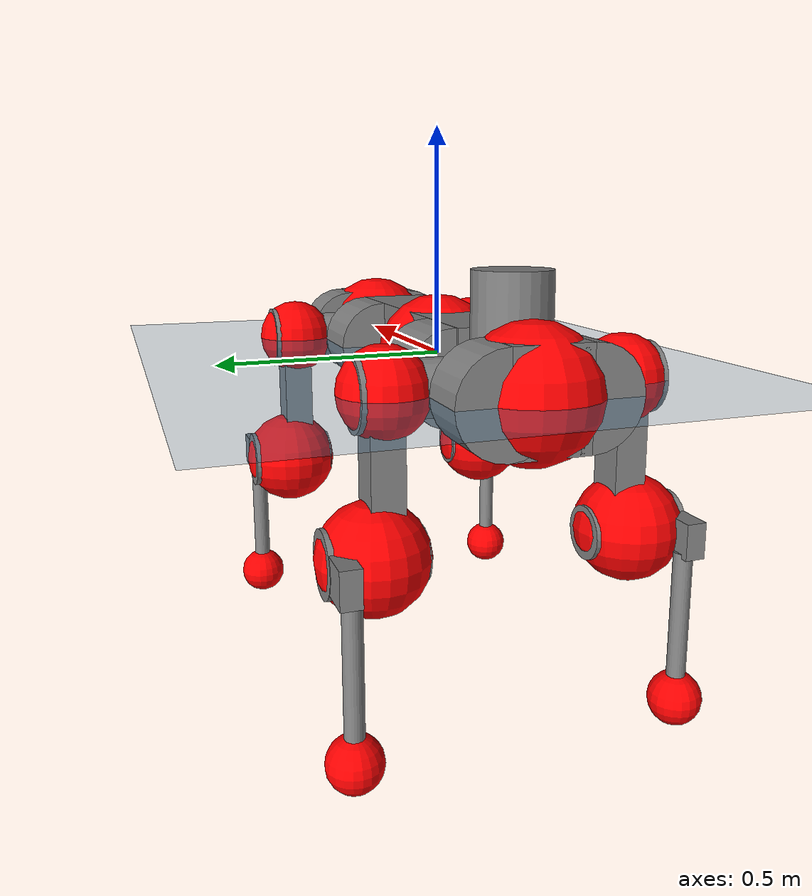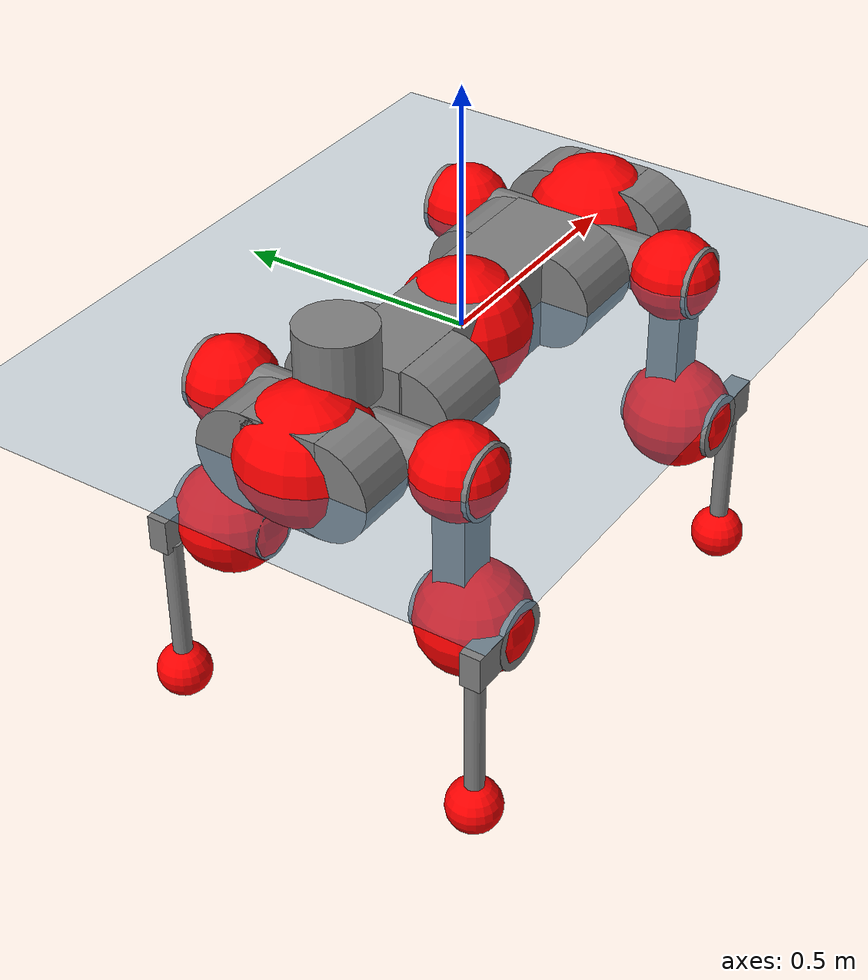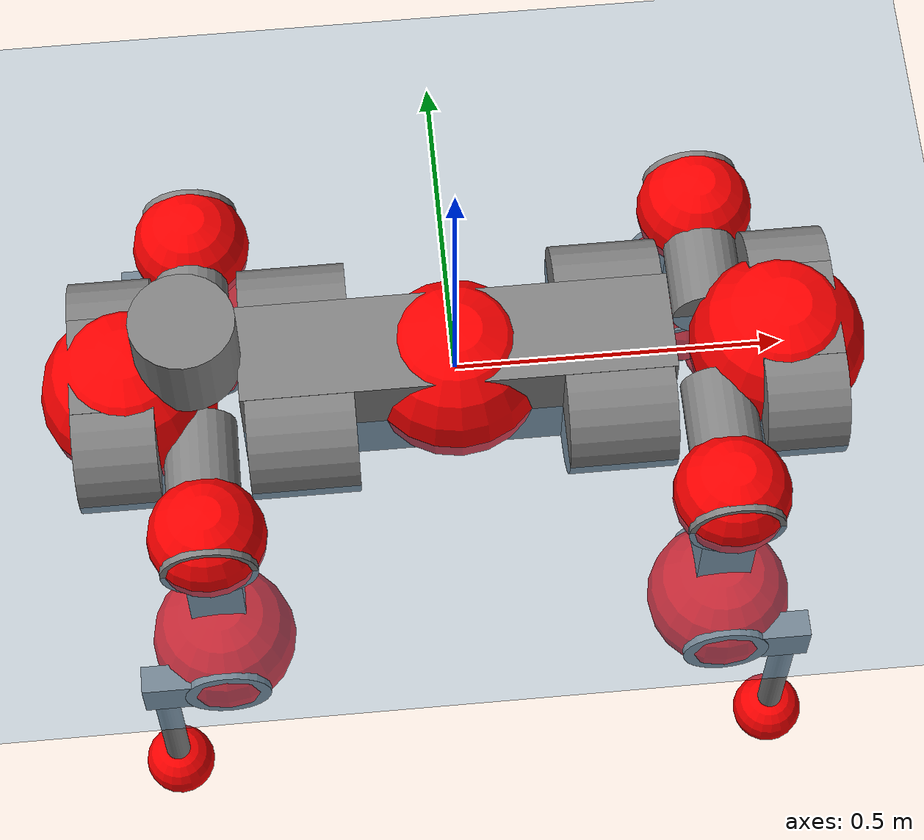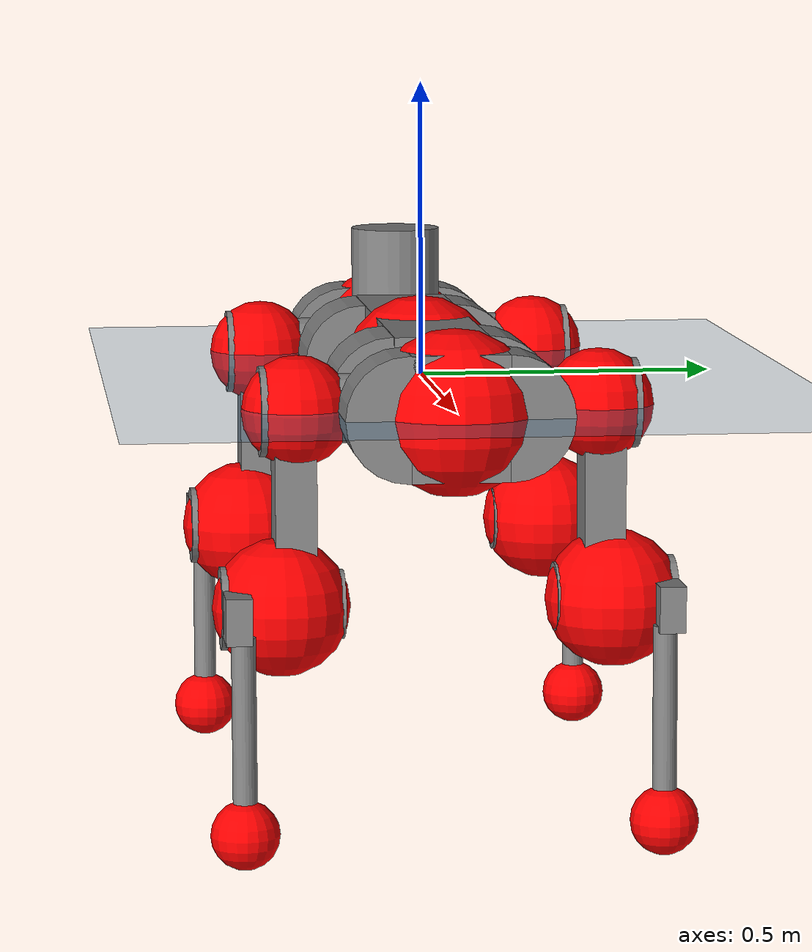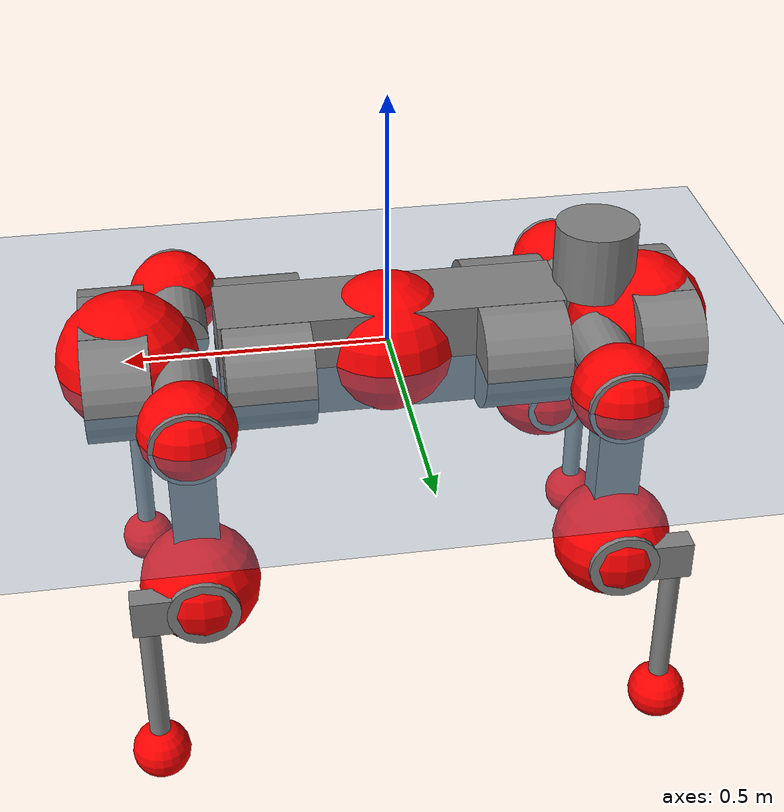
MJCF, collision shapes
<mujoco model="anymal_c">
  <compiler angle="radian" assetdir="assets" balanceinertia="true" inertiafromgeom="false"/>

  <option timestep="0.005" density="1.2" viscosity="2e-05"/>

  <size nkey="1"/>

  <visual>
    <quality shadowsize="8192"/>
    <map shadowclip="0.5"/>
  </visual>

  <default>
    <default class="/">
      <material specular="0" shininess="0.25"/>
      <geom contype="0" conaffinity="0" group="1" solref="-1000 -80"/>
      <site size="0.01 0.005 0.005" group="5"/>
      <general forcelimited="true" forcerange="-80 80" biastype="affine" gainprm="80" biasprm="0 -80 -2"/>
      <default class="anymal_c">
        <joint armature="0.01" damping="0.01" frictionloss="0.1"/>
        <default class="visual">
          <geom type="mesh" group="2"/>
          <default class="visual_zflip"/>
        </default>
        <default class="collision">
          <geom type="cylinder" group="3"/>
          <default class="foot">
            <geom size="0.03 0 0" type="sphere" condim="6" priority="1" friction="0.8 0.02 0.01" solimp="0.015 1 0.03"/>
          </default>
        </default>
      </default>
      <default class="reward_collision_sphere">
        <geom group="5" rgba="1 0 0 1"/>
      </default>
    </default>
  </default>

  <asset>
    <texture type="skybox" colorspace="auto" name="//unnamed_texture_0" builtin="gradient" rgb1="0.95 0.95 0.95" rgb2="0.95 0.95 0.95" width="100" height="600"/>
    <texture type="2d" colorspace="auto" name="texplane" builtin="checker" rgb1="0.345 0.575 0.748" rgb2="0.345 0.575 0.748" markrgb="1 1 1" width="512" height="512"/>
    <texture type="2d" colorspace="linear" name="base" file="base.png"/>
    <texture type="2d" colorspace="linear" name="top_shell" file="top_shell.png"/>
    <texture type="2d" colorspace="linear" name="bottom_shell" file="bottom_shell.png"/>
    <texture type="2d" colorspace="linear" name="remote" file="remote.png"/>
    <texture type="2d" colorspace="linear" name="hatch" file="hatch.png"/>
    <texture type="2d" colorspace="linear" name="handle" file="handle.png"/>
    <texture type="2d" colorspace="linear" name="face" file="face.png"/>
    <texture type="2d" colorspace="linear" name="battery" file="battery.png"/>
    <texture type="2d" colorspace="linear" name="lidar_cage" file="lidar_cage.png"/>
    <texture type="2d" colorspace="linear" name="depth_camera" file="depth_camera.png"/>
    <texture type="2d" colorspace="linear" name="wide_angle_camera" file="wide_angle_camera.png"/>
    <texture type="2d" colorspace="linear" name="lidar" file="lidar.png"/>
    <texture type="2d" colorspace="linear" name="drive" file="drive.png"/>
    <texture type="2d" colorspace="linear" name="hip_l" file="hip_l.png"/>
    <texture type="2d" colorspace="linear" name="shank_l" file="shank_l.png"/>
    <texture type="2d" colorspace="linear" name="foot" file="foot.png"/>
    <texture type="2d" colorspace="linear" name="thigh" file="thigh.png"/>
    <texture type="2d" colorspace="linear" name="shank_r" file="shank_r.png"/>
    <texture type="2d" colorspace="linear" name="hip_r" file="hip_r.png"/>
    <material name="MatPlane" class="/" texture="texplane" texuniform="true" texrepeat="2 2" specular="0.9" shininess="0.5"/>
    <material name="black_plastic" class="/" rgba="0.007 0.007 0.007 1"/>
    <material name="green" class="/" rgba="0.052 0.178 0.033 1"/>
    <material name="red" class="/" rgba="0.178 0.006 0.005 1"/>
    <material name="yellow" class="/" rgba="0.178 0.119 0.006 1"/>
    <material name="lwl" class="/" rgba="0.8 0.8 0.8 1"/>
    <material name="base" class="/" texture="base"/>
    <material name="top_shell" class="/" texture="top_shell"/>
    <material name="bottom_shell" class="/" texture="bottom_shell"/>
    <material name="hip_l" class="/" texture="hip_l"/>
    <material name="thigh" class="/" texture="thigh"/>
    <material name="shank_l" class="/" texture="shank_l"/>
    <material name="foot" class="/" texture="foot"/>
    <material name="hip_r" class="/" texture="hip_r"/>
    <material name="shank" class="/" texture="shank_r"/>
    <material name="hatch" class="/" texture="hatch"/>
    <material name="remote" class="/" texture="remote"/>
    <material name="handle" class="/" texture="handle"/>
    <material name="face" class="/" texture="face"/>
    <material name="depth_camera" class="/" texture="depth_camera"/>
    <material name="wide_angle_camera" class="/" texture="wide_angle_camera"/>
    <material name="battery" class="/" texture="battery"/>
    <material name="lidar_cage" class="/" texture="lidar_cage"/>
    <material name="lidar" class="/" texture="lidar"/>
    <material name="drive" class="/" texture="drive"/>
    <mesh name="base_0" class="/" file="base_0.obj"/>
    <mesh name="base_1" class="/" file="base_1.obj"/>
    <mesh name="base_2" class="/" file="base_2.obj"/>
    <mesh name="base_3" class="/" file="base_3.obj"/>
    <mesh name="base_4" class="/" file="base_4.obj"/>
    <mesh name="base_5" class="/" file="base_5.obj"/>
    <mesh name="top_shell" class="/" file="top_shell.obj"/>
    <mesh name="bottom_shell" class="/" file="bottom_shell.obj"/>
    <mesh name="remote" class="/" file="remote.obj"/>
    <mesh name="handle" class="/" file="handle.obj"/>
    <mesh name="face" class="/" file="face.obj"/>
    <mesh name="wide_angle_camera" class="/" file="wide_angle_camera.obj"/>
    <mesh name="depth_camera" class="/" file="depth_camera.obj"/>
    <mesh name="battery" class="/" file="battery.obj"/>
    <mesh name="lidar_cage" class="/" file="lidar_cage.obj"/>
    <mesh name="lidar" class="/" file="lidar.obj"/>
    <mesh name="drive" class="/" file="drive.obj"/>
    <mesh name="hip_l" class="/" file="hip_l.obj"/>
    <mesh name="thigh" class="/" file="thigh.obj"/>
    <mesh name="shank_l" class="/" file="shank_l.obj"/>
    <mesh name="foot" class="/" file="foot.obj"/>
    <mesh name="hip_r" class="/" file="hip_r.obj"/>
    <mesh name="hatch" class="/" file="hatch.obj"/>
    <mesh name="shank_r" class="/" file="shank_r.obj"/>
  </asset>

  <worldbody>
    <geom name="floor" class="/" size="100 100 0.125" type="plane" group="0" material="MatPlane"/>
    <light name="toplight_shadow" class="/" pos="0 0 5" dir="0.0990148 0.0990148 -0.990148" type="directional" ambient="0.04 0.04 0.04" diffuse="0.55 0.55 0.55" specular="0.12 0.12 0.12"/>
    <light name="toplight_fill" class="/" pos="0 0 5" dir="0.0990148 0.0990148 -0.990148" type="directional" castshadow="false" ambient="0.04 0.04 0.04" diffuse="0.3 0.3 0.3" specular="0.08 0.08 0.08"/>
    <body name="trunk" childclass="anymal_c" pos="-0.000201874 -0.00142157 -0.000371121" quat="1 3.90642e-05 5.3376e-05 -3.62693e-05">
      <inertial pos="0.00461415 -0.000946846 0.0536545" quat="0.503957 0.50477 0.497599 0.493589" mass="27.2029" diaginertia="0.99657 1.28941 0.376451"/>
      <joint name="//unnamed_joint_0" type="free" armature="0" damping="0" frictionloss="0"/>
      <geom name="//unnamed_geom_1" class="visual" material="green" mesh="base_0"/>
      <geom name="//unnamed_geom_2" class="visual" material="yellow" mesh="base_1"/>
      <geom name="//unnamed_geom_3" class="visual" material="red" mesh="base_2"/>
      <geom name="//unnamed_geom_4" class="visual" material="black_plastic" mesh="base_3"/>
      <geom name="//unnamed_geom_5" class="visual" material="lwl" mesh="base_4"/>
      <geom name="//unnamed_geom_6" class="visual" material="base" mesh="base_5"/>
      <geom name="trunk_1" class="collision" size="0.327482 0.0790474 0.101632" type="box"/>
      <geom name="trunk_2" class="collision" size="0.101632 0.0818705" pos="0.23907 0.0820382 0" quat="0.707107 0 0.707107 0"/>
      <geom name="trunk_3" class="collision" size="0.101632 0.0818705" pos="-0.23907 0.0820382 0" quat="0.707107 0 0.707107 0"/>
      <geom name="trunk_4" class="collision" size="0.101632 0.0818705" pos="0.23907 -0.0820382 0" quat="0.707107 0 0.707107 0"/>
      <geom name="trunk_5" class="collision" size="0.101632 0.0818705" pos="-0.23907 -0.0820382 0" quat="0.707107 0 0.707107 0"/>
      <geom name="//unnamed_geom_12" class="visual" material="top_shell" mesh="top_shell"/>
      <geom name="//unnamed_geom_13" class="visual" material="bottom_shell" mesh="bottom_shell"/>
      <geom name="//unnamed_geom_14" class="visual" material="remote" mesh="remote"/>
      <geom name="//unnamed_geom_15" class="visual" material="handle" mesh="handle"/>
      <geom name="//unnamed_geom_16" class="visual" pos="0.455607 0 0" quat="1 0 0 0" material="face" mesh="face"/>
      <geom name="trunk_6" class="collision" size="0.0621087 0.0790474 0.101632" pos="0.516062 0 0" type="box"/>
      <geom name="//unnamed_geom_18" class="collision" size="0.101632 0.0621087" pos="0.516062 0.0820382 0" quat="0.707107 0 0.707107 0"/>
      <geom name="//unnamed_geom_19" class="collision" size="0.101632 0.0621087" pos="0.516062 -0.0820382 0" quat="0.707107 0 0.707107 0"/>
      <geom name="//unnamed_geom_20" class="visual" pos="0.507434 0 -0.0327372" quat="0.965926 0 0.258819 0" material="depth_camera" mesh="depth_camera"/>
      <geom name="//unnamed_geom_21" class="visual" pos="0.563876 0 0.0167155" material="wide_angle_camera" mesh="wide_angle_camera"/>
      <geom name="//unnamed_geom_22" class="visual_zflip" pos="-0.455607 0 0" quat="0 0 0 1" material="face" mesh="face"/>
      <geom name="trunk_7" class="collision" size="0.0621087 0.0790474 0.101632" pos="-0.516062 0 0" quat="0 0 0 1" type="box"/>
      <geom name="//unnamed_geom_24" class="collision" size="0.101632 0.0621087" pos="-0.516062 -0.0820382 0" quat="0 -0.707107 0 0.707107"/>
      <geom name="//unnamed_geom_25" class="collision" size="0.101632 0.0621087" pos="-0.516062 0.0820382 0" quat="0 -0.707107 0 0.707107"/>
      <geom name="//unnamed_geom_26" class="visual" pos="-0.507434 0 -0.0327372" quat="0 -0.258819 0 0.965926" material="depth_camera" mesh="depth_camera"/>
      <geom name="//unnamed_geom_27" class="visual_zflip" pos="-0.563876 0 0.0167155" quat="0 0 0 1" material="wide_angle_camera" mesh="wide_angle_camera"/>
      <geom name="//unnamed_geom_28" class="visual" material="battery" mesh="battery"/>
      <geom name="//unnamed_geom_29" class="visual" pos="0 0.0905652 0.0323048" quat="0.683013 -0.183013 0.183013 0.683013" material="depth_camera" mesh="depth_camera"/>
      <geom name="//unnamed_geom_30" class="visual" pos="0 -0.0905652 0.0323048" quat="0.683013 0.183013 0.183013 -0.683013" material="depth_camera" mesh="depth_camera"/>
      <geom name="//unnamed_geom_31" class="visual" pos="-0.400099 0 0.0820701" quat="1 0 0 0" material="lidar_cage" mesh="lidar_cage"/>
      <geom name="trunk_8" class="collision" size="0.0790474 0.0677549" pos="-0.400099 0 0.149066"/>
      <geom name="//unnamed_geom_33" class="visual" pos="-0.400099 2.86017e-05 0.158781" quat="0.707107 0 0 -0.707107" material="lidar" mesh="lidar"/>
      <geom name="//unnamed_geom_34" class="visual" pos="0.329642 0.121866 9.55205e-10" quat="0.258819 0.965926 0 0" material="drive" mesh="drive"/>
      <geom name="//unnamed_geom_35" class="visual" pos="0.329642 -0.121866 -9.55205e-10" quat="0.258819 -0.965926 0 0" material="drive" mesh="drive"/>
      <geom name="//unnamed_geom_36" class="visual" pos="-0.329642 0.121866 -9.55205e-10" quat="0 0 0.965926 -0.258819" material="drive" mesh="drive"/>
      <geom name="//unnamed_geom_37" class="visual" pos="-0.329642 -0.121866 9.55205e-10" quat="0 0 -0.965926 -0.258819" material="drive" mesh="drive"/>
      <geom name="//unnamed_geom_38" class="visual" pos="0.127504 0 0.0815118" quat="1 0 0 0" material="hatch" mesh="hatch"/>
      <geom name="//unnamed_geom_39" class="reward_collision_sphere" size="0.13551"/>
      <geom name="//unnamed_geom_40" class="reward_collision_sphere" size="0.13551" pos="0.494628 0 0"/>
      <geom name="//unnamed_geom_41" class="reward_collision_sphere" size="0.13551" pos="-0.494628 0 0"/>
      <site name="imu" pos="0.281512 0.0226852 0.0445225" size="0.0112925"/>
      <camera name="track" pos="0 -2.34395 0" quat="0.707107 0.707107 0 0" mode="trackcom"/>
      <camera name="ego_camera" pos="0.494628 0 -0.044664" quat="-0.5 -0.5 0.5 0.5"/>
      <body name="LF_HIP" pos="0.332129 0.120399 0.000157877" quat="0.258277 0.966071 -0.000110658 0.000166669">
        <inertial pos="0.0618523 -0.0173937 -0.00642144" quat="-0.128215 0.710086 -0.135085 0.679037" mass="3.9762" diaginertia="0.00940411 0.0108154 0.00565178"/>
        <joint name="LF_HAA" pos="0 0 0" axis="0.999992 -0.00102794 0.0037954" range="-0.755594 0.542114" armature="0.0116992" damping="0.00192641" frictionloss="0.12495"/>
        <geom name="//unnamed_geom_42" class="visual" pos="0 5.61904e-05 -9.22923e-06" quat="0.258819 -0.965926 0 0" material="hip_l" mesh="hip_l"/>
        <geom name="//unnamed_geom_43" class="visual" pos="0.0658404 -0.0807186 -0.0461933" quat="0.183013 -0.683013 0.683013 0.183013" material="drive" mesh="drive"/>
        <geom name="//unnamed_geom_44" class="collision" size="0.0564624 0.0790474" pos="0.0658404 -0.0140166 -0.00771012" quat="-0.353553 -0.612372 0.612372 -0.353553"/>
        <body name="LF_THIGH" pos="0.0663641 -0.0866533 -0.0482884" quat="0.183168 -0.682584 0.683564 0.182394">
          <inertial pos="0.0358647 0.00250826 -0.273626" quat="0.993172 -0.00561426 -0.0825285 0.0822647" mass="4.42115" diaginertia="0.0478216 0.0654289 0.00696808"/>
          <joint name="LF_HFE" pos="0 0 0" axis="0.999983 0.000209046 0.00587969" stiffness="0.00353487" range="-3.09035 3.1344" armature="0.0118991" damping="0.0182783" frictionloss="0.128065"/>
          <geom name="//unnamed_geom_45" class="visual" pos="-0.00144846 -2.28244e-06 0" quat="0.707107 0 0 -0.707107" material="thigh" mesh="thigh"/>
          <geom name="//unnamed_geom_46" class="collision" size="0.0734012 0.04517" pos="0.0439669 0 0" quat="0.5 0.5 -0.5 -0.5"/>
          <geom name="//unnamed_geom_47" class="collision" size="0.0423468 0.0338775 0.159579" pos="0.0329752 0 -0.157791" quat="0.707107 0 0 -0.707107" type="box"/>
          <geom name="//unnamed_geom_48" class="visual" pos="0.110247 0 -0.318231" quat="1 0 0 0" material="drive" mesh="drive"/>
          <geom name="//unnamed_geom_49" class="collision" size="0.0564624 0.0790474" pos="0.0333049 0 -0.318231" quat="0.707107 0 0.707107 0"/>
          <geom name="//unnamed_geom_50" class="reward_collision_sphere" size="0.0903399" pos="0.0274793 0 0"/>
          <body name="LF_SHANK" pos="0.107576 0.000191256 -0.32119" quat="0.999999 0.000254074 -0.000901602 -0.000996201">
            <inertial pos="0.00827685 -0.0718019 -0.0889097" quat="0.993028 -0.115324 -0.00147961 -0.0243508" mass="0.84611" diaginertia="0.0160131 0.0202994 0.00196561"/>
            <joint name="LF_KFE" pos="0 0 0" axis="0.999977 0.00343193 0.00593186" stiffness="0.00116768" range="-3.11979 3.13283" armature="0.010001" damping="0.00904604" frictionloss="0.110403"/>
            <geom name="//unnamed_geom_51" class="visual" pos="-0.000472311 -0.00251839 0" quat="0.707107 0 0 -0.707107" material="shank_l" mesh="shank_l"/>
            <geom name="LF_kfe_act" class="collision" size="0.0677549 0.022585" pos="0.0219835 0 0" quat="0.5 0.5 -0.5 -0.5"/>
            <geom name="//unnamed_geom_53" class="collision" size="0.0649307 0.0381122 0.0214557" pos="0.0219835 -0.0673873 0" quat="0.5 0.5 -0.5 -0.5" type="box"/>
            <geom name="//unnamed_geom_54" class="visual" pos="0.0143443 -0.103887 -0.377377" quat="0.382683 0 0 -0.92388" material="foot" mesh="foot"/>
            <geom name="LF_calf" class="collision" size="0.0197619 0.159509" pos="0.0143442 -0.103075 -0.188689" quat="0.707107 0 0 -0.707107"/>
            <geom name="LF_foot" class="foot" size="0.0304509" pos="0.0143442 -0.103075 -0.352254" quat="0.707107 0 0 -0.707107"/>
            <geom name="//unnamed_geom_57" class="reward_collision_sphere" size="0.112925" pos="-0.0549586 0 0"/>
            <geom name="//unnamed_geom_58" class="reward_collision_sphere" size="0.0564624" pos="0.0143442 -0.103075 -0.352254"/>
            <site name="LF_foot" class="foot" pos="0.0143442 -0.103075 -0.352254" quat="0.707107 0 0 -0.707107" size="0.0112925"/>
          </body>
        </body>
      </body>
      <body name="RF_HIP" pos="0.328874 -0.123743 -0.00294101" quat="0.258812 -0.965928 -6.28447e-05 0.000177565">
        <inertial pos="0.0598279 0.0201338 -0.00753042" quat="0.135367 0.677474 0.131648 0.710897" mass="3.9562" diaginertia="0.00906491 0.0110612 0.00576168"/>
        <joint name="RF_HAA" pos="0 0 0" axis="0.999926 -0.00652368 0.0102311" range="-0.50195 0.7359" armature="0.0125669" damping="0.0230519" frictionloss="0.127444"/>
        <geom name="//unnamed_geom_59" class="visual" pos="0 -5.61899e-05 -9.2292e-06" quat="0.258819 0.965926 0 0" material="hip_r" mesh="hip_r"/>
        <geom name="//unnamed_geom_60" class="visual" pos="0.0658404 0.0807186 -0.0461933" quat="0.183013 0.683013 0.683013 -0.183013" material="drive" mesh="drive"/>
        <geom name="//unnamed_geom_61" class="collision" size="0.0564624 0.0790474" pos="0.0658404 0.0140166 -0.00771012" quat="-0.353553 0.612372 0.612372 0.353553"/>
        <body name="RF_THIGH" pos="0.0656629 0.0830649 -0.0439739" quat="0.181552 0.683454 0.683195 -0.182137">
          <inertial pos="0.0312169 0.00144202 -0.273318" quat="0.992255 -0.0167576 -0.0811532 0.0925367" mass="4.57969" diaginertia="0.0487757 0.0666381 0.00710036"/>
          <joint name="RF_HFE" pos="0 0 0" axis="0.999995 -0.0016415 -0.0028758" range="-3.1327 3.1419" armature="0.0112645" damping="0.022056" frictionloss="0.113034"/>
          <geom name="//unnamed_geom_62" class="visual" pos="-0.00144846 -2.28244e-06 0" quat="0.707107 0 0 -0.707107" material="thigh" mesh="thigh"/>
          <geom name="//unnamed_geom_63" class="collision" size="0.0734012 0.04517" pos="0.0439669 0 0" quat="0.5 0.5 0.5 0.5"/>
          <geom name="//unnamed_geom_64" class="collision" size="0.0423468 0.0338775 0.159579" pos="0.0329752 0 -0.157791" quat="0.707107 0 0 0.707107" type="box"/>
          <geom name="//unnamed_geom_65" class="visual" pos="0.110247 0 -0.318231" quat="1 0 0 0" material="drive" mesh="drive"/>
          <geom name="//unnamed_geom_66" class="collision" size="0.0564624 0.0790474" pos="0.0333049 0 -0.318231" quat="0.707107 0 0.707107 0"/>
          <geom name="//unnamed_geom_67" class="reward_collision_sphere" size="0.0903399" pos="0.0274793 0 0"/>
          <body name="RF_SHANK" pos="0.110425 0.000511819 -0.320532" quat="1 0.000261427 1.54456e-05 -0.000176832">
            <inertial pos="0.00892357 0.0722616 -0.0879083" quat="0.992795 0.116089 0.0107624 0.0276784" mass="0.842143" diaginertia="0.0166287 0.0205307 0.00199999"/>
            <joint name="RF_KFE" pos="0 0 0" axis="0.999992 -0.0037462 0.00170854" range="-3.10681 3.13547" armature="0.0111154" damping="0.00739196" frictionloss="0.109093"/>
            <geom name="//unnamed_geom_68" class="visual" pos="-0.000472309 0.00251838 0" quat="0.707107 0 0 0.707107" material="shank" mesh="shank_r"/>
            <geom name="RF_kfe_act" class="collision" size="0.0677549 0.022585" pos="0.0219835 0 0" quat="0.5 0.5 0.5 0.5"/>
            <geom name="//unnamed_geom_70" class="collision" size="0.0649307 0.0381122 0.0214557" pos="0.0219835 0.0673873 0" quat="0.5 0.5 0.5 0.5" type="box"/>
            <geom name="//unnamed_geom_71" class="visual" pos="0.0143441 0.103887 -0.377377" quat="0.382683 0 0 0.92388" material="foot" mesh="foot"/>
            <geom name="RF_calf" class="collision" size="0.0197619 0.159509" pos="0.0143442 0.103075 -0.188689" quat="0.707107 0 0 0.707107"/>
            <geom name="RF_foot" class="foot" size="0.0263632" pos="0.0143442 0.103075 -0.352254" quat="0.707107 0 0 0.707107"/>
            <geom name="//unnamed_geom_74" class="reward_collision_sphere" size="0.112925" pos="-0.0549586 0 0"/>
            <geom name="//unnamed_geom_75" class="reward_collision_sphere" size="0.0564624" pos="0.0143442 0.103075 -0.352254"/>
            <site name="RF_foot" class="foot" pos="0.0143442 0.103075 -0.352254" quat="0.707107 0 0 0.707107" size="0.0112925"/>
          </body>
        </body>
      </body>
      <body name="LH_HIP" pos="-0.32797 0.122406 0.0035678" quat="-0.000190293 0.00153347 0.96596 -0.258688">
        <inertial pos="0.0621161 0.0168452 -0.00667107" quat="0.127309 0.674213 0.131335 0.715528" mass="4.25767" diaginertia="0.00977879 0.0112471 0.00590898"/>
        <joint name="LH_HAA" pos="0 0 0" axis="0.999972 -0.00501074 0.00553708" range="-0.464806 0.668695" armature="0.0116324" damping="0.00348911" frictionloss="0.120276"/>
        <geom name="//unnamed_geom_76" class="visual" pos="0 -5.61899e-05 -9.2292e-06" quat="-0.258819 -0.965926 0 0" material="hip_r" mesh="hip_r"/>
        <geom name="//unnamed_geom_77" class="visual" pos="0.0658404 0.0807186 -0.0461933" quat="0.183013 0.683013 0.683013 -0.183013" material="drive" mesh="drive"/>
        <geom name="//unnamed_geom_78" class="collision" size="0.0564624 0.0790474" pos="0.0658404 0.0140166 -0.00771012" quat="-0.353553 0.612372 0.612372 0.353553"/>
        <body name="LH_THIGH" pos="0.0630779 0.0868145 -0.0453987" quat="0.183743 0.682779 0.683263 -0.182217">
          <inertial pos="0.0338173 -0.000135029 -0.273631" quat="0.992444 0.00393243 -0.0886342 0.0847515" mass="4.47079" diaginertia="0.0488447 0.0706062 0.00753482"/>
          <joint name="LH_HFE" pos="0 0 0" axis="1 0.000284785 0.000313408" stiffness="0.0007575" range="-3.16933 3.18776" armature="0.00989624" damping="0.00362578" frictionloss="0.114554"/>
          <geom name="//unnamed_geom_79" class="visual" pos="-0.00144846 -2.28244e-06 0" quat="0.707107 0 0 -0.707107" material="thigh" mesh="thigh"/>
          <geom name="//unnamed_geom_80" class="collision" size="0.0734012 0.04517" pos="0.0439669 0 0" quat="0.5 0.5 -0.5 -0.5"/>
          <geom name="//unnamed_geom_81" class="collision" size="0.0423468 0.0338775 0.159579" pos="0.0329752 0 -0.157791" quat="0.707107 0 0 -0.707107" type="box"/>
          <geom name="//unnamed_geom_82" class="visual" pos="0.110247 0 -0.318231" quat="1 0 0 0" material="drive" mesh="drive"/>
          <geom name="//unnamed_geom_83" class="collision" size="0.0564624 0.0790474" pos="0.0333049 0 -0.318231" quat="0.707107 0 0.707107 0"/>
          <geom name="//unnamed_geom_84" class="reward_collision_sphere" size="0.0903399" pos="0.0274793 0 0"/>
          <body name="LH_SHANK" pos="0.107998 0.00191841 -0.315649" quat="0.999999 0.000969576 -0.000518156 0.000112245">
            <inertial pos="0.00642446 0.0714615 -0.0906917" quat="0.993203 0.112838 -0.000386284 0.0285387" mass="0.899629" diaginertia="0.0169106 0.0212773 0.00201073"/>
            <joint name="LH_KFE" pos="0 0 0" axis="0.999938 0.00821283 -0.0074776" range="-3.16615 3.10956" armature="0.0107" damping="0" frictionloss="0.117158"/>
            <geom name="//unnamed_geom_85" class="visual" pos="-0.000472309 0.00251838 0" quat="-0.707107 0 0 -0.707107" material="shank" mesh="shank_r"/>
            <geom name="LH_kfe_act" class="collision" size="0.0677549 0.022585" pos="0.0219835 0 0" quat="0.5 0.5 -0.5 -0.5"/>
            <geom name="//unnamed_geom_87" class="collision" size="0.0649307 0.0381122 0.0214557" pos="0.0219835 0.0673873 0" quat="0.5 0.5 -0.5 -0.5" type="box"/>
            <geom name="//unnamed_geom_88" class="visual" pos="0.0143441 0.103887 -0.377377" quat="-0.382683 0 0 -0.92388" material="foot" mesh="foot"/>
            <geom name="LH_calf" class="collision" size="0.0197619 0.159509" pos="0.0143442 0.103075 -0.188689" quat="0.707107 0 0 -0.707107"/>
            <geom name="LH_foot" class="foot" size="0.038098" pos="0.0143442 0.103075 -0.352254" quat="0.707107 0 0 -0.707107"/>
            <geom name="//unnamed_geom_91" class="reward_collision_sphere" size="0.112925" pos="-0.0549586 0 0"/>
            <geom name="//unnamed_geom_92" class="reward_collision_sphere" size="0.0564624" pos="0.0143442 0.103075 -0.352254"/>
            <site name="LH_foot" class="foot" pos="0.0143442 0.103075 -0.352254" quat="0.707107 0 0 -0.707107" size="0.0112925"/>
          </body>
        </body>
      </body>
      <body name="RH_HIP" pos="-0.32741 -0.123808 -0.00151484" quat="7.46012e-05 0.000290414 -0.965824 -0.259198">
        <inertial pos="0.064346 -0.0172532 -0.0115886" quat="-0.122749 0.708537 -0.142946 0.680055" mass="4.08296" diaginertia="0.00988959 0.0115956 0.00587848"/>
        <joint name="RH_HAA" pos="0 0 0" axis="0.999999 0.00150464 -4.39648e-05" stiffness="0.00862552" range="-0.731833 0.494189" armature="0.0113773" damping="0.00552515" frictionloss="0.112454"/>
        <geom name="//unnamed_geom_93" class="visual" pos="0 5.61904e-05 -9.22923e-06" quat="-0.258819 0.965926 0 0" material="hip_l" mesh="hip_l"/>
        <geom name="//unnamed_geom_94" class="visual" pos="0.0658404 -0.0807186 -0.0461933" quat="-0.183013 0.683013 -0.683013 -0.183013" material="drive" mesh="drive"/>
        <geom name="//unnamed_geom_95" class="collision" size="0.0564624 0.0790474" pos="0.0658404 -0.0140166 -0.00771012" quat="0.353553 0.612372 -0.612372 0.353553"/>
        <body name="RH_THIGH" pos="0.0645025 -0.0835064 -0.0455411" quat="-0.183011 0.682974 -0.683058 -0.18299">
          <inertial pos="0.0339675 6.82503e-05 -0.271757" quat="0.993918 -0.00466141 -0.0729338 0.0823771" mass="4.23456" diaginertia="0.0467664 0.0632594 0.00704142"/>
          <joint name="RH_HFE" pos="0 0 0" axis="1 -1.21436e-05 -1.88584e-05" range="-3.11761 3.19546" armature="0.0118072" damping="0.00549357" frictionloss="0.119096"/>
          <geom name="//unnamed_geom_96" class="visual" pos="-0.00144846 -2.28244e-06 0" quat="0.707107 0 0 -0.707107" material="thigh" mesh="thigh"/>
          <geom name="//unnamed_geom_97" class="collision" size="0.0734012 0.04517" pos="0.0439669 0 0" quat="0.5 0.5 0.5 0.5"/>
          <geom name="//unnamed_geom_98" class="collision" size="0.0423468 0.0338775 0.159579" pos="0.0329752 0 -0.157791" quat="0.707107 0 0 0.707107" type="box"/>
          <geom name="//unnamed_geom_99" class="visual" pos="0.110247 0 -0.318231" quat="1 0 0 0" material="drive" mesh="drive"/>
          <geom name="//unnamed_geom_100" class="collision" size="0.0564624 0.0790474" pos="0.0333049 0 -0.318231" quat="0.707107 0 0.707107 0"/>
          <geom name="//unnamed_geom_101" class="reward_collision_sphere" size="0.0903399" pos="0.0274793 0 0"/>
          <body name="RH_SHANK" pos="0.112869 0.00232957 -0.3165" quat="0.999999 8.29314e-05 0.000319998 0.00143966">
            <inertial pos="0.00420861 -0.0717945 -0.0923577" quat="0.993354 -0.109041 0.000822533 -0.0368305" mass="0.849332" diaginertia="0.0161808 0.0197063 0.00196332"/>
            <joint name="RH_KFE" pos="0 0 0" axis="0.999999 -0.000347687 0.000941865" range="-3.15295 3.13154" armature="0.011268" damping="0.00798845" frictionloss="0.110234"/>
            <geom name="//unnamed_geom_102" class="visual" pos="-0.000472311 -0.00251839 0" quat="0.707107 0 0 -0.707107" material="shank_l" mesh="shank_l"/>
            <geom name="RH_kfe_act" class="collision" size="0.0677549 0.022585" pos="0.0219835 0 0" quat="0.5 0.5 0.5 0.5"/>
            <geom name="//unnamed_geom_104" class="collision" size="0.0649307 0.0381122 0.0214557" pos="0.0219835 -0.0673873 0" quat="0.5 0.5 0.5 0.5" type="box"/>
            <geom name="//unnamed_geom_105" class="visual" pos="0.0143443 -0.103887 -0.377377" quat="0.382683 0 0 -0.92388" material="foot" mesh="foot"/>
            <geom name="RH_calf" class="collision" size="0.0197619 0.159509" pos="0.0143442 -0.103075 -0.188689" quat="0.707107 0 0 0.707107"/>
            <geom name="RH_foot" class="foot" size="0.0286503" pos="0.0143442 -0.103075 -0.352254" quat="0.707107 0 0 0.707107"/>
            <geom name="//unnamed_geom_108" class="reward_collision_sphere" size="0.112925" pos="-0.0549586 0 0"/>
            <geom name="//unnamed_geom_109" class="reward_collision_sphere" size="0.0564624" pos="0.0143442 -0.103075 -0.352254"/>
            <site name="RH_foot" class="foot" pos="0.0143442 -0.103075 -0.352254" quat="0.707107 0 0 0.707107" size="0.0112925"/>
          </body>
        </body>
      </body>
    </body>
  </worldbody>

  <contact>
    <pair class="/" geom1="floor" geom2="LF_foot" name="//unnamed_contact_0"/>
    <pair class="/" geom1="floor" geom2="RF_foot" name="//unnamed_contact_1"/>
    <pair class="/" geom1="floor" geom2="LH_foot" name="//unnamed_contact_2"/>
    <pair class="/" geom1="floor" geom2="RH_foot" name="//unnamed_contact_3"/>
  </contact>

  <actuator>
    <general name="LF_HAA" class="/" joint="LF_HAA" forcerange="-84.2704 84.2704" gainprm="90.2275" biasprm="0 -90.2275 -2.42442"/>
    <general name="LF_HFE" class="/" joint="LF_HFE" forcerange="-82.5688 82.5688" gainprm="90.2275" biasprm="0 -90.2275 -2.42442"/>
    <general name="LF_KFE" class="/" joint="LF_KFE" forcerange="-84.8891 84.8891" gainprm="90.2275" biasprm="0 -90.2275 -2.42442"/>
    <general name="RF_HAA" class="/" joint="RF_HAA" forcerange="-89.2776 89.2776" gainprm="90.2275" biasprm="0 -90.2275 -2.42442"/>
    <general name="RF_HFE" class="/" joint="RF_HFE" forcerange="-89.6722 89.6722" gainprm="90.2275" biasprm="0 -90.2275 -2.42442"/>
    <general name="RF_KFE" class="/" joint="RF_KFE" forcerange="-97.9717 97.9717" gainprm="90.2275" biasprm="0 -90.2275 -2.42442"/>
    <general name="LH_HAA" class="/" joint="LH_HAA" forcerange="-87.7017 87.7017" gainprm="90.2275" biasprm="0 -90.2275 -2.42442"/>
    <general name="LH_HFE" class="/" joint="LH_HFE" forcerange="-95.7415 95.7415" gainprm="90.2275" biasprm="0 -90.2275 -2.42442"/>
    <general name="LH_KFE" class="/" joint="LH_KFE" forcerange="-82.7709 82.7709" gainprm="90.2275" biasprm="0 -90.2275 -2.42442"/>
    <general name="RH_HAA" class="/" joint="RH_HAA" forcerange="-93.5546 93.5546" gainprm="90.2275" biasprm="0 -90.2275 -2.42442"/>
    <general name="RH_HFE" class="/" joint="RH_HFE" forcerange="-89.7068 89.7068" gainprm="90.2275" biasprm="0 -90.2275 -2.42442"/>
    <general name="RH_KFE" class="/" joint="RH_KFE" forcerange="-91.273 91.273" gainprm="90.2275" biasprm="0 -90.2275 -2.42442"/>
  </actuator>

  <sensor>
    <gyro site="imu" name="imu_angular_velocity"/>
    <velocimeter site="imu" name="imu_linear_velocity"/>
    <framelinvel objtype="site" objname="LF_foot" name="LF_foot_global_linear_velocity"/>
    <framelinvel objtype="site" objname="RF_foot" name="RF_foot_global_linear_velocity"/>
    <framelinvel objtype="site" objname="LH_foot" name="LH_foot_global_linear_velocity"/>
    <framelinvel objtype="site" objname="RH_foot" name="RH_foot_global_linear_velocity"/>
  </sensor>

  <keyframe>
    <key name="home" qpos="0 0 0.55 1 0 0 0 0 0.4 -0.8 0 -0.4 0.8 0 -0.4 0.8 0 0.4 -0.8"/>
  </keyframe>
</mujoco>
